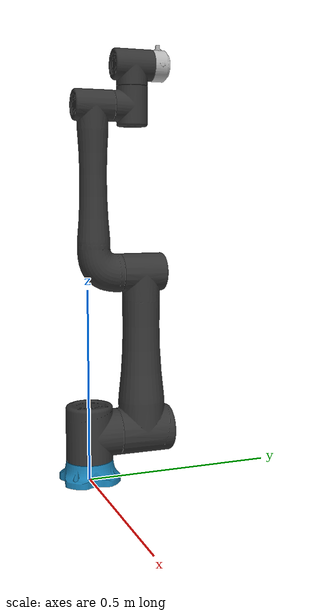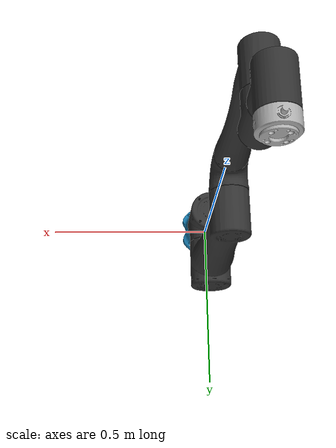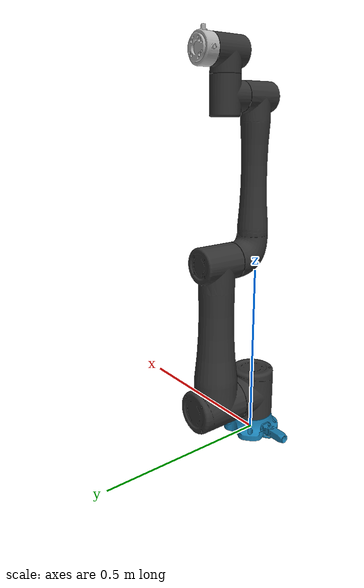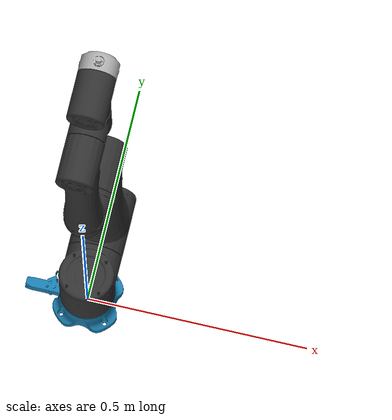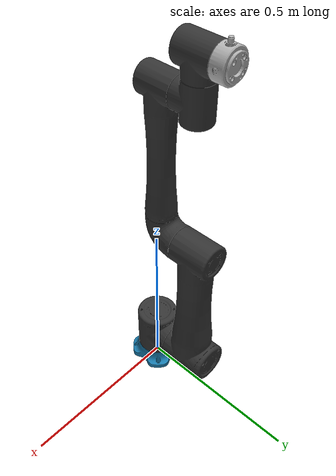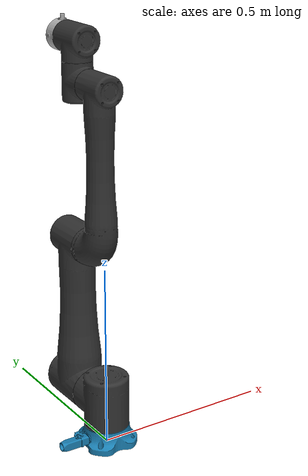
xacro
<?xml version="1.0"?>

<robot xmlns:xacro="http://wiki.ros.org/xacro" name="orion5_v166">

   <xacro:include filename="$(find orion5_description)/urdf/orion5_v166_arm.xacro"/>
   <xacro:include filename="$(find orion5_description)/urdf/transmissions.xacro"/>
   <xacro:include filename="$(find orion5_description)/urdf/gazebo_control.xacro"/>
   <xacro:include filename="$(find orion5_description)/urdf/colors.xacro"/>

   <link name="world"/>

   <joint name="world_fixed_joint" type="fixed">
      <origin xyz="0.0 0.0 0.0" rpy="0 0 0" />
      <parent link="world" />
      <child link="base_link" />
   </joint>

   <xacro:orion5_v166 />

   <xacro:transmissions />
   <xacro:gazebo_control />
   <xacro:colors />

</robot>

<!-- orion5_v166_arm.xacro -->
<robot xmlns:xacro="http://wiki.ros.org/xacro">

    <!-- tcp_z: offset of the MoveIt tip link (eef_tcp_link) from eef_link along +Z.
         0.0 for the bare arm; the MC1 robot xacro passes the gripper TCP offset. -->
    <xacro:macro name="orion5_v166" params="tcp_z:=0.0">

        <link name="base_link">
            <inertial>
                <origin rpy="0 0 3.92699081" xyz="0.0014872 0.025681 0.0015954"/>
                <mass value="0.43234"/>
                <inertia ixx="0.00085424" ixy="-4.256E-07" ixz="1.7204E-05" iyy="0.0014489" iyz="-3.1849E-07" izz="0.00085002"/>
            </inertial>
            <visual>
                <origin rpy="0 0 3.92699081" xyz="0 0 0"/>
                <geometry>
                    <mesh filename="package://orion5_description/meshes/base_link.STL"/>
                </geometry>
                <material name="blue">
                </material>
            </visual>
            <collision>
                <origin rpy="0 0 3.92699081" xyz="0 0 0"/>
                <geometry>
                    <mesh filename="package://orion5_description/meshes/base_link.STL"/>
                </geometry>
            </collision>
        </link>

        <joint name="joint_1" type="revolute">
            <origin xyz="0 0 0.05375" rpy="0 0 0.7853981" />
            <parent link="base_link" />
            <child link="link_1" />
            <axis xyz="0 0 -1" />
            <limit lower="-3.14" upper="3.14" effort="200" velocity="1.57" />
            <dynamics damping="0.1" friction="0.1"/>
        </joint>

        <link name="link_1">
            <inertial>
                <origin rpy="0 0 0" xyz="0.0032053 0.0032066 0.071258"/>
                <mass value="1.4977"/>
                <inertia ixx="0.0040548" ixy="-6.3827e-05" ixz="1.9488e-05" iyy="0.0040547" iyz="1.9457e-05" izz="0.003024"/>
            </inertial>
            <visual>
                <origin rpy="0 0 0" xyz="0 0 0"/>
                <geometry>
                    <mesh filename="package://orion5_description/meshes/link_1.STL"/>
                </geometry>
                <material name="black">
                </material>
            </visual>
            <collision>
                <origin rpy="0 0 0" xyz="0 0 0"/>
                <geometry>
                    <mesh filename="package://orion5_description/meshes/link_1.STL"/>
                </geometry>
            </collision>
        </link>

        <joint name="joint_2" type="revolute">
            <origin xyz="0.044371 0.044371 0.06825" rpy="-1.5708 0 -0.7854" />
            <parent link="link_1" />
            <child link="link_2" />
            <axis xyz="0 0 -1" />
            <limit lower="-3.14" upper="3.14" effort="200" velocity="1.57" />
            <dynamics damping="0.1" friction="0.1"/>
        </joint>

        <link name="link_2">
            <inertial>
                <origin rpy="0 0 0" xyz="-0.011965 -0.20398 0.082482"/>
                <mass value="3.9537"/>
                <inertia ixx="0.14571" ixy="0.0011447" ixz="-8.9776e-05" iyy="0.0068268" iyz="-0.00039373" izz="0.14325"/>
            </inertial>
            <visual>
                <origin rpy="0 0 0" xyz="0 0 0"/>
                <geometry>
                    <mesh filename="package://orion5_description/meshes/link_2.STL"/>
                </geometry>
                <material name="black">
                </material>
            </visual>
            <collision>
                <origin rpy="0 0 0" xyz="0 0 0"/>
                <geometry>
                    <mesh filename="package://orion5_description/meshes/link_2.STL"/>
                </geometry>
            </collision>
        </link>

        <joint name="joint_3" type="revolute">
            <origin xyz="0 -0.421 0.02325" rpy="-3.1416 0 0" />
            <parent link="link_2" />
            <child link="link_3" />
            <axis xyz="0 0 -1" />
            <limit lower="-2.8" upper="2.8" effort="200" velocity="1.57" />
            <dynamics damping="0.1" friction="0.1"/>
        </joint>

        <link name="link_3">
            <inertial>
                <origin rpy="0 0 0" xyz="-0.0003235 0.25691 0.062797"/>
                <mass value="1.0868"/>
                <inertia ixx="0.0084673" ixy="-4.0465e-05" ixz="-1.4163e-06" iyy="0.0014603" iyz="-0.00016568" izz="0.0081904"/>
            </inertial>
            <visual>
                <origin rpy="0 0 0" xyz="0 0 0"/>
                <geometry>
                    <mesh filename="package://orion5_description/meshes/link_3.STL"/>
                </geometry>
                <material name="black">
                </material>
            </visual>
            <collision>
                <origin rpy="0 0 0" xyz="0 0 0"/>
                <geometry>
                    <mesh filename="package://orion5_description/meshes/link_3.STL"/>
                </geometry>
            </collision>
        </link>

        <joint name="joint_4" type="revolute">
            <origin xyz="0 0.427 0.018" rpy="-3.1416 0 0" />
            <parent link="link_3" />
            <child link="link_4" />
            <axis xyz="0 0 -1" />
            <limit lower="-3.14" upper="3.14" effort="200" velocity="1.57" />
            <dynamics damping="0.1" friction="0.1"/>
        </joint>

        <link name="link_4">
            <inertial>
                <origin rpy="0 0 0" xyz="0.00067229 -0.010802 0.051025"/>
                <mass value="0.50427"/>
                <inertia ixx="0.00065514" ixy="-1.9544e-06" ixz="1.7674e-07" iyy="0.00043345" iyz="2.2995e-06" izz="0.00063832"/>
            </inertial>
            <visual>
                <origin rpy="0 0 0" xyz="0 0 0"/>
                <geometry>
                    <mesh filename="package://orion5_description/meshes/link_4.STL"/>
                </geometry>
                <material name="black">
                </material>
            </visual>
            <collision>
                <origin rpy="0 0 0" xyz="0 0 0"/>
                <geometry>
                    <mesh filename="package://orion5_description/meshes/link_4.STL"/>
                </geometry>
            </collision>
        </link>

        <joint name="joint_5" type="revolute">
            <origin xyz="0 -0.052 0.053" rpy="1.5708 -0.7854 0" />
            <parent link="link_4" />
            <child link="link_5" />
            <axis xyz="0 0 -1" />
            <limit lower="-3.14" upper="3.14" effort="200" velocity="1.57" />
            <dynamics damping="0.1" friction="0.1"/>
        </joint>

        <link name="link_5">
            <inertial>
                <origin rpy="0 0 0" xyz="-0.0023932 -0.0027963 0.046475"/>
                <mass value="0.23998"/>
                <inertia ixx="0.00019279" ixy="-1.1587e-05" ixz="1.866e-06" iyy="0.00019279" iyz="1.7368e-06" izz="0.00019816"/>
            </inertial>
            <visual>
                <origin rpy="0 0 0" xyz="0 0 0"/>
                <geometry>
                    <mesh filename="package://orion5_description/meshes/link_5.STL"/>
                </geometry>
                <material name="black">
                </material>
            </visual>
            <collision>
                <origin rpy="0 0 0" xyz="0 0 0"/>
                <geometry>
                    <mesh filename="package://orion5_description/meshes/link_5.STL"/>
                </geometry>
            </collision>
        </link>

        <joint name="joint_6" type="revolute">
            <origin xyz="0.031289 0.031289 0.053" rpy="-1.5708 0 -0.7854" />
            <parent link="link_5" />
            <child link="link_6" />
            <axis xyz="0 0 -1" />
            <limit lower="-3.14" upper="3.14" effort="200" velocity="1.57" />
            <dynamics damping="0.1" friction="0.1"/>
        </joint>

        <link name="link_6">
            <inertial>
                <origin rpy="0 0 0" xyz="-0.00030609 -0.00064718 0.026501"/>
                <mass value="0.0029836"/>
                <inertia ixx="9.0087e-05" ixy="2.945e-08" ixz="-1.0412e-07" iyy="8.7872e-05" iyz="-9.2359e-08" izz="0.00013295"/>
            </inertial>
            <visual>
                <origin rpy="0 0 0" xyz="0 0 0"/>
                <geometry>
                    <mesh filename="package://orion5_description/meshes/link_6.STL"/>
                </geometry>
                <material name="gray">
                </material>
            </visual>
            <collision>
                <origin rpy="0 0 0" xyz="0 0 0"/>
                <geometry>
                    <mesh filename="package://orion5_description/meshes/link_6.STL"/>
                </geometry>
            </collision>
        </link>

        <joint name="eef_fixed_joint" type="fixed">
            <origin rpy="0 0 0" xyz="0 0 0.047"/>
            <parent link="link_6"/>
            <child link="eef_link"/>
        </joint>

        <link name="eef_link">
            <inertial>
                <origin rpy="0 0 0" xyz="0 0 0"/>
                <mass value="0.00001"/>
                <inertia ixx="0" ixy="0" ixz="0" iyy="0" iyz="0" izz="0"/>
            </inertial>
        </link>

        <!-- MoveIt planning tip (SRDF group orion5_arm: base_link -> eef_tcp_link) -->
        <joint name="eef_tcp_fixed_joint" type="fixed">
            <origin rpy="0 0 0" xyz="0 0 ${tcp_z}"/>
            <parent link="eef_link"/>
            <child link="eef_tcp_link"/>
        </joint>

        <link name="eef_tcp_link">
            <inertial>
                <origin rpy="0 0 0" xyz="0 0 0"/>
                <mass value="0.00001"/>
                <inertia ixx="0" ixy="0" ixz="0" iyy="0" iyz="0" izz="0"/>
            </inertial>
        </link>

    </xacro:macro>

</robot>

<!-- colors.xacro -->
<robot xmlns:xacro="http://wiki.ros.org/xacro">

    <xacro:macro name="colors">

        <material name="black">
            <color rgba="0.2 0.2 0.2 1.0" />
        </material>
        <material name="gray">
            <color rgba="0.7 0.7 0.7 1.0" />
        </material>
        <material name="blue">
            <color rgba="0.1 0.5 0.7 1.0" />
        </material>

    </xacro:macro>

</robot>
